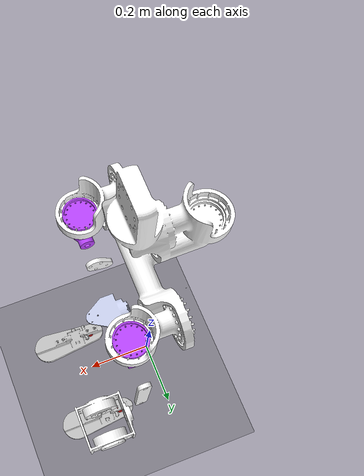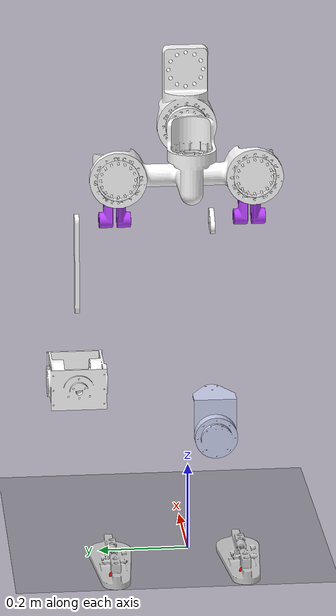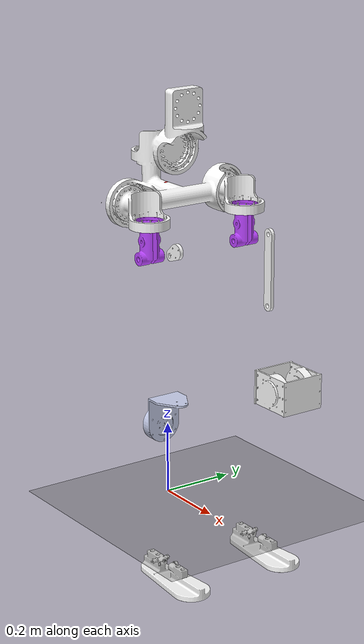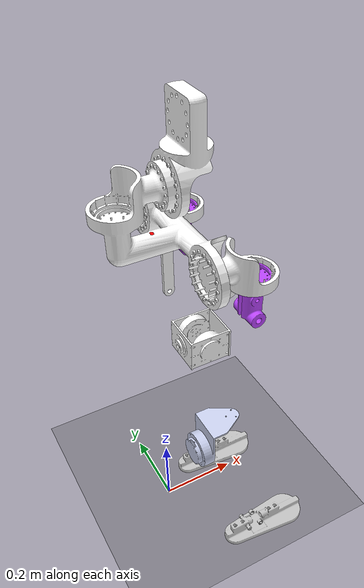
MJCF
<mujoco model="装配体1Xml">
  <compiler angle="radian" autolimits="true"/>
  <!--statistic meansize="0.203163" extent="1.55195" center="-0.0412926 -0.494957 -0.417371"/-->
  <default>
    <geom contype="0" conaffinity="0" condim="1" solref="0.005 1"/>
  </default>
  <option timestep='0.0005' iterations="50" solver='PGS' gravity='0 0 -9.81'/>
  <visual>
    <quality shadowsize='4096'/>
    <global realtime="0.5" />
  </visual>
  <asset>
    <texture type="skybox" builtin="gradient" rgb1="0.4 0.6 0.8" width="128" height="128"/>
    <texture name="plane" type="2d" builtin="checker" rgb1="0.2 0.2 0.2" rgb2="0.3 0.3 0.3" width="500" height="500" />
    <material name="plane" reflectance="0.0" texture="plane" texrepeat="1 1" texuniform="true"/>
    <mesh name="base_link" file="base_link.STL"/>
    <mesh name="link1" file="link1.STL"/>
    <mesh name="link3" file="link3.STL"/>
    <mesh name="link5" file="link5.STL"/>
    <mesh name="link7" file="link7.STL"/>
    <mesh name="link9" file="link9.STL"/>
    <mesh name="link2" file="link2.STL"/>
    <mesh name="link4" file="link4.STL"/>
    <mesh name="link6" file="link6.STL"/>
    <mesh name="link8" file="link8.STL"/>
    <mesh name="link10" file="link10.STL"/>
  </asset>
  <worldbody>
    <light directional="false" cutoff="60" exponent="1" diffuse=".5 .5 .5" specular=".1 .1 .1" pos="0.5 0.1 0.8" dir="-0.5 -0.1 -0.8"/>
    <!--geom name="floor" pos="0  0  0" euler="0 0. 0" size="5 5 5" type="plane" material="plane" condim="3" conaffinity="15" friction="0.8 0.1 0.1" contype="6"/-->
    <geom name="floor" pos="0  0  0" euler="0 0. 0" size="10 10 10" type="plane" material="plane" condim="3" contype="2" conaffinity="2" friction="2. 1 1"/>
    <body name="201" pos="0 0 0.87 ">
      <inertial pos="0. 0. 0." mass="1.84901115291554"  diaginertia="0.00652068429486678 0.0103761022631757 0.00871059232017087"/>
      <joint type="slide" axis="1 0 0" limited="false" range="-0.01 0.01"/>
      <joint type="slide" axis="0 1 0" limited="false" range="-0.01 0.01"/>
      <joint type="slide" axis="0 0 1" limited="false" range="-0.05 0.05"/>
      <joint name="thetaX" type="hinge" axis="1 0 0" limited="false" range="-0.05 0.05"/>
      <joint name="thetaY" type="hinge" axis="0 1 0" limited="false" range="-0.01 0.01"/>
      <joint name="thetaZ" type="hinge" axis="0 0 1" limited="false" range="-0.01 0.01"/>
      <geom type="mesh" rgba="1 1 1 1" mesh="base_link" contype="0" conaffinity="0" />
      <site name="imu" size="0.01" pos="0 0 0" rgba="1 0 0 1"/>

        <body name="link1" pos="0.043001 -0.15 -0.015843">
          <inertial pos="0.046031 -1.9047e-06 -0.0074349" quat="0 0.812851 0 0.582472" mass="0.29285" diaginertia="0.000714287 0.00063081 0.000302153"/>
          <joint name="hip_roll_r" pos="0 0 0" axis="1 0 0"/>
          <geom type="mesh" rgba="1 1 1 1" mesh="link1" contype="3" conaffinity="0"/>
          <body name="link3" pos="0.098 0 -0.0345">
            <inertial pos="1.1193e-09 4.2797e-08 -0.043344" quat="1 0 0 1.8098e-06" mass="0.20168" diaginertia="0.00029047 0.00026773 0.00010635"/>
            <joint name="hip_yaw_r" pos="0 0 0" axis="0 0 1"/>
            <geom type="mesh" rgba="0.72941 0.26667 1 1" mesh="link3" contype="3" conaffinity="0"/>
            <body name="link5" pos="0 0.08 -0.088">
              <inertial pos="0.0088854 -0.10009 -0.20306" quat="0.999773 0.0140826 0.0154073 0.00436172" mass="4.5138" diaginertia="0.0701379 0.0541173 0.0201547"/>
              <joint name="hip_pitch_r" pos="0 0 0" axis="0 1 0" range="-1 1"/>
              <geom type="mesh" rgba="1 1 1 1" mesh="link5" contype="3" conaffinity="0"/>
              <body name="link7" pos="0.01814 0 -0.4096">
                <inertial pos="0.011256 -0.10085 -0.20752" quat="0.978796 0.0262502 -0.00219851 -0.203137" mass="1.4355" diaginertia="0.0176174 0.0173587 0.00180725"/>
                <site name="imu_rightFoot" size="0.01" pos="0. -0.075 -0.45 " rgba="1 0 0 1"/>
                <joint name="knee_pitch_r" pos="0 0 0" axis="0 1 0" range="0 1.5"/>
                <geom type="mesh" rgba="0.79216 0.81961 0.93333 1" mesh="link7" contype="1" conaffinity="0"/>
                <body name="link9" pos="0.014952 -0.053 -0.42174">

                  <inertial pos="0.071751 -0.026108 -0.029302" quat="-0.000578077 0.707151 9.85409e-05 0.707062" mass="0.39956" diaginertia="0.0020649 0.0019164 0.000196098"/>
                  <joint name="ankle_pitch_r" pos="0 0 0" axis="0 1 0" range="-1 1"/>
                  <geom type="mesh" rgba="1 1 1 1" mesh="link9" contype="3" conaffinity="0"/>
                </body>
              </body>
            </body>
          </body>
        </body>
        <body name="link2" pos="0.043001 0.15 -0.015843">
          <inertial pos="0.046031 -1.9039e-06 -0.0074349" quat="0 0.812851 0 0.582472" mass="0.29285" diaginertia="0.000714287 0.00063081 0.000302153"/>
          <joint name="hip_roll_l" pos="0 0 0" axis="1 0 0" />
          <geom type="mesh" rgba="1 1 1 1" mesh="link2" contype="0" conaffinity="3"/>
          <body name="link4" pos="0.098 0 -0.0345">
            <inertial pos="1.1193e-09 4.2797e-08 -0.043344" quat="1 0 0 1.8098e-06" mass="0.20168" diaginertia="0.00029047 0.00026773 0.00010635"/>
            <joint name="hip_yaw_l" pos="0 0 0" axis="0 0 1"/>
            <geom type="mesh" rgba="0.72941 0.26667 1 1" mesh="link4" contype="0" conaffinity="3"/>
            <body name="link6" pos="0 0.08 -0.088">
              <inertial pos="0.0084065 -0.10009 -0.20308" quat="0.999754 0.0140875 0.0165862 0.00434491" mass="4.5138" diaginertia="0.0701385 0.0541173 0.0201542"/>
              <joint name="hip_pitch_l" pos="0 0 0" axis="0 1 0" range="-1 1"/>
              <geom type="mesh" rgba="1 1 1 1" mesh="link6" contype="0" conaffinity="3"/>
              <body name="link8" pos="0.0171743 0 -0.40964">
                <site name="imu_leftFoot" size="0.01" pos="0. -0.075 -0.45" rgba="1 0 0 1"/>
                <inertial pos="0.010427 -0.0588 -0.20401" quat="0.978926 -0.0259014 -0.000620295 0.202564" mass="1.4355" diaginertia="0.0176209 0.0173619 0.00180293"/>
                <joint name="knee_pitch_l" pos="0 0 0" axis="0 1 0" range="0 1.5"/>
                <geom type="mesh" rgba="1 1 1 1" mesh="link8" contype="0" conaffinity="1"/>
                <body name="link10" pos="0.0159183 -0.054 -0.4217">

                  <inertial pos="0.069387 -0.026108 -0.029398" quat="-0.000578077 0.707151 9.85409e-05 0.707062" mass="0.39956" diaginertia="0.0020649 0.0019164 0.000196098"/>
                  <joint name="ankle_pitch_l" pos="0 0 0" axis="0 1 0" range="-1 1"/>
                  <geom type="mesh" rgba="1 1 1 1" mesh="link10" contype="0" conaffinity="3"/>
                </body>
              </body>
            </body>
          </body>
        </body>
    </body>
  </worldbody>

  <actuator>
    <motor name="hip_yaw_l"  joint="hip_yaw_l" ctrllimited="false" ctrlrange="-300 300"/>
    <motor name="hip_roll_l"  joint="hip_roll_l" ctrllimited="false" ctrlrange="-300 300"/>
    <motor name="hip_pitch_l"  joint="hip_pitch_l" ctrllimited="false" ctrlrange="-300 300"/>
    <motor name="knee_pitch_l"  joint="knee_pitch_l" ctrllimited="false" ctrlrange="-300 300"/>

    <motor name="hip_yaw_r"  joint="hip_roll_r" ctrllimited="false" ctrlrange="-300 300"/>
    <motor name="hip_roll_r"  joint="hip_roll_r" ctrllimited="false" ctrlrange="-300 300"/>
    <motor name="hip_pitch_r"  joint="hip_pitch_r" ctrllimited="false" ctrlrange="-300 300"/>
    <motor name="knee_pitch_r"  joint="knee_pitch_r" ctrllimited="false" ctrlrange="-300 300"/>

    <motor name="ankle_l"  joint="ankle_pitch_l" ctrllimited="false" ctrlrange="-300 300"/>
    <motor name="ankle_r"  joint="ankle_pitch_r" ctrllimited="false" ctrlrange="-300 300"/>

    <position name="right_ankle_pos" joint="ankle_pitch_r" kp="20"/>;
    <position name="left_ankle_pos" joint="ankle_pitch_l" kp="20"/>;

    <velocity name="right_ankle_vel" joint="ankle_pitch_r" kv="0.2"/>
    <velocity name="left_ankle_vel" joint="ankle_pitch_l" kv="0.2"/>
  </actuator>

  <sensor>
    <framequat name="imu" objtype="site" objname="imu"/>
    <gyro site="imu"/>
    <accelerometer site="imu"/>

    <actuatorpos name="hip_yaw_l_pos"   actuator="hip_yaw_l" />
    <actuatorpos name="hip_roll_l_pos"    actuator="hip_roll_l" />
    <actuatorpos name="hip_pitch_l_pos"    actuator="hip_pitch_l" />
    <actuatorpos name="knee_pitch_l_pos"    actuator="knee_pitch_l" />

    <actuatorpos name="hip_yaw_r_pos"   actuator="hip_yaw_r" />
    <actuatorpos name="hip_roll_r_pos"    actuator="hip_roll_r" />
    <actuatorpos name="hip_pitch_r_pos"    actuator="hip_pitch_r" />
    <actuatorpos name="knee_pitch_r_pos"    actuator="knee_pitch_r" />

    <actuatorvel name="hip_yaw_l_vel"   actuator="hip_yaw_l" />
    <actuatorvel name="hip_roll_l_vel"    actuator="hip_roll_l" />
    <actuatorvel name="hip_pitch_l_vel"    actuator="hip_pitch_l" />
    <actuatorvel name="knee_pitch_l_vel"    actuator="knee_pitch_l" />

    <actuatorvel name="hip_yaw_r_vel"   actuator="hip_yaw_r" />
    <actuatorvel name="hip_roll_r_vel"    actuator="hip_roll_r" />
    <actuatorvel name="hip_pitch_r_vel"    actuator="hip_pitch_r" />
    <actuatorvel name="knee_pitch_r_vel"    actuator="knee_pitch_r" />

    <actuatorfrc name="hip_yaw_l_frc"   actuator="hip_yaw_l" />
    <actuatorfrc name="hip_roll_l_frc"    actuator="hip_roll_l" />
    <actuatorfrc name="hip_pitch_l_frc"    actuator="hip_pitch_l" />
    <actuatorfrc name="knee_pitch_l_frc"    actuator="knee_pitch_l" />

    <actuatorfrc name="hip_yaw_r_frc"   actuator="hip_yaw_r" />
    <actuatorfrc name="hip_roll_r_frc"    actuator="hip_roll_r" />
    <actuatorfrc name="hip_pitch_r_frc"    actuator="hip_pitch_r" />
    <actuatorfrc name="knee_pitch_r_frc"    actuator="knee_pitch_r" />

    <framepos objtype="site" objname="imu"/>
    <framepos objtype="site" objname="imu_leftFoot"/>
    <framepos objtype="site" objname="imu_rightFoot"/>

  </sensor>

</mujoco>
